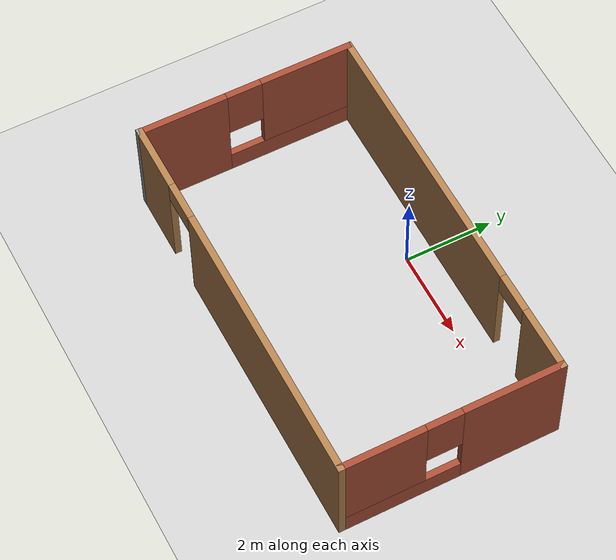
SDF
<sdf version="1.7">
 <world name="default">
  <light name="sun" type="directional">
   <pose>0 0 10 0 -0 0</pose>
   <diffuse>0.8 0.8 0.8 1</diffuse>
   <specular>0.2 0.2 0.2 1</specular>
   <attenuation>
    <range>1000</range>
    <constant>0.9</constant>
    <linear>0.01</linear>
    <quadratic>0.001</quadratic>
   </attenuation>
   <direction>-0.5 0.1 -0.9</direction>
   <spot><inner_angle>0</inner_angle><outer_angle>0</outer_angle><falloff>0</falloff></spot>
  </light>
  <model name="ground_plane">
   <static>1</static>
   <link name="link">
    <collision name="collision">
     <geometry><plane><normal>0 0 1</normal><size>100 100</size></plane></geometry>
     <surface>
      <contact><collide_bitmask>65535</collide_bitmask></contact>
      <friction><ode><mu>100</mu><mu2>50</mu2></ode></friction>
     </surface>
    </collision>
    <visual name="visual">
     <cast_shadows>0</cast_shadows>
     <geometry><plane><normal>0 0 1</normal><size>100 100</size></plane></geometry>
     <material>
      <script><uri>file://media/materials/scripts/gazebo.material</uri><name>Gazebo/Grey</name></script>
     </material>
    </visual>
   </link>
  </model>
  <gravity>0 0 -9.8</gravity>
  <magnetic_field>6e-06 2.3e-05 -4.2e-05</magnetic_field>
  <atmosphere type="adiabatic"/>
  <physics type="ode">
   <max_step_size>0.001</max_step_size>
   <real_time_factor>1</real_time_factor>
   <real_time_update_rate>1000</real_time_update_rate>
  </physics>
  <scene><ambient>0.4 0.4 0.4 1</ambient><background>0.7 0.7 0.7 1</background><shadows>1</shadows></scene>
  <audio><device>default</device></audio>
  <spherical_coordinates>
   <surface_model>EARTH_WGS84</surface_model>
   <latitude_deg>0</latitude_deg>
   <longitude_deg>0</longitude_deg>
   <elevation>0</elevation>
   <heading_deg>0</heading_deg>
  </spherical_coordinates>
  <model name="test1">
   <pose>0.507025 -1.7521 0 0 -0 0</pose>
   <link name="Wall_14">
    <pose>0.005 -2.425 0 0 -0 3.14159</pose>
    <visual name="Wall_14_Visual_0">
     <pose>-1.23615 0 1.25 0 -0 0</pose>
     <geometry><box><size>6.5277 0.15 2.5</size></box></geometry>
     <material>
      <script><uri>file://media/materials/scripts/gazebo.material</uri><name>Gazebo/Wood</name></script>
      <ambient>1 1 1 1</ambient>
     </material>
     <meta><layer>0</layer></meta>
    </visual>
    <collision name="Wall_14_Collision_0">
     <geometry><box><size>6.5277 0.15 2.5</size></box></geometry>
     <pose>-1.23615 0 1.25 0 -0 0</pose>
    </collision>
    <visual name="Wall_14_Visual_1">
     <pose>3.71385 0 1.25 0 -0 0</pose>
     <geometry><box><size>1.5723 0.15 2.5</size></box></geometry>
     <material>
      <script><uri>file://media/materials/scripts/gazebo.material</uri><name>Gazebo/Wood</name></script>
      <ambient>1 1 1 1</ambient>
     </material>
     <meta><layer>0</layer></meta>
    </visual>
    <collision name="Wall_14_Collision_1">
     <geometry><box><size>1.5723 0.15 2.5</size></box></geometry>
     <pose>3.71385 0 1.25 0 -0 0</pose>
    </collision>
    <visual name="Wall_14_Visual_2">
     <pose>2.4777 0 2.25 0 -0 0</pose>
     <geometry><box><size>0.9 0.15 0.5</size></box></geometry>
     <material>
      <script><uri>file://media/materials/scripts/gazebo.material</uri><name>Gazebo/Wood</name></script>
      <ambient>1 1 1 1</ambient>
     </material>
     <meta><layer>0</layer></meta>
    </visual>
    <collision name="Wall_14_Collision_2">
     <geometry><box><size>0.9 0.15 0.5</size></box></geometry>
     <pose>2.4777 0 2.25 0 -0 0</pose>
    </collision>
   </link>
   <link name="Wall_6">
    <collision name="Wall_6_Collision">
     <geometry><box><size>0.16 0.15 2.5</size></box></geometry>
     <pose>0 0 1.25 0 -0 0</pose>
    </collision>
    <visual name="Wall_6_Visual">
     <pose>0 0 1.25 0 -0 0</pose>
     <geometry><box><size>0.16 0.15 2.5</size></box></geometry>
     <material>
      <script><uri>file://media/materials/scripts/gazebo.material</uri><name>Gazebo/Grey</name></script>
      <ambient>1 1 1 1</ambient>
     </material>
     <meta><layer>0</layer></meta>
    </visual>
    <pose>-4.425 -2.425 0 0 -0 0</pose>
   </link>
   <link name="Wall_7">
    <pose>-4.42 -0 0 0 -0 1.5708</pose>
    <visual name="Wall_7_Visual_0">
     <pose>-1.47886 0 1.25 0 -0 0</pose>
     <geometry><box><size>2.04228 0.15 2.5</size></box></geometry>
     <material>
      <script><uri>file://media/materials/scripts/gazebo.material</uri><name>Gazebo/Bricks</name></script>
      <ambient>1 1 1 1</ambient>
     </material>
     <meta><layer>0</layer></meta>
    </visual>
    <collision name="Wall_7_Collision_0">
     <geometry><box><size>2.04228 0.15 2.5</size></box></geometry>
     <pose>-1.47886 0 1.25 0 -0 0</pose>
    </collision>
    <visual name="Wall_7_Visual_1">
     <pose>1.02114 0 0.25 0 -0 0</pose>
     <geometry><box><size>2.95772 0.15 0.5</size></box></geometry>
     <material>
      <script><uri>file://media/materials/scripts/gazebo.material</uri><name>Gazebo/Bricks</name></script>
      <ambient>1 1 1 1</ambient>
     </material>
     <meta><layer>0</layer></meta>
    </visual>
    <collision name="Wall_7_Collision_1">
     <geometry><box><size>2.95772 0.15 0.5</size></box></geometry>
     <pose>1.02114 0 0.25 0 -0 0</pose>
    </collision>
    <visual name="Wall_7_Visual_2">
     <pose>1.42114 0 1.5 0 -0 0</pose>
     <geometry><box><size>2.15773 0.15 2</size></box></geometry>
     <material>
      <script><uri>file://media/materials/scripts/gazebo.material</uri><name>Gazebo/Bricks</name></script>
      <ambient>1 1 1 1</ambient>
     </material>
     <meta><layer>0</layer></meta>
    </visual>
    <collision name="Wall_7_Collision_2">
     <geometry><box><size>2.15773 0.15 2</size></box></geometry>
     <pose>1.42114 0 1.5 0 -0 0</pose>
    </collision>
    <visual name="Wall_7_Visual_3">
     <pose>-0.057725 0 1.9 0 -0 0</pose>
     <geometry><box><size>0.8 0.15 1.2</size></box></geometry>
     <material>
      <script><uri>file://media/materials/scripts/gazebo.material</uri><name>Gazebo/Bricks</name></script>
      <ambient>1 1 1 1</ambient>
     </material>
     <meta><layer>0</layer></meta>
    </visual>
    <collision name="Wall_7_Collision_3">
     <geometry><box><size>0.8 0.15 1.2</size></box></geometry>
     <pose>-0.057725 0 1.9 0 -0 0</pose>
    </collision>
   </link>
   <link name="Wall_8">
    <pose>0.005 2.425 0 0 -0 0</pose>
    <visual name="Wall_8_Visual_0">
     <pose>-1.19449 0 1.25 0 -0 0</pose>
     <geometry><box><size>6.61102 0.15 2.5</size></box></geometry>
     <material>
      <script><uri>file://media/materials/scripts/gazebo.material</uri><name>Gazebo/Wood</name></script>
      <ambient>1 1 1 1</ambient>
     </material>
     <meta><layer>0</layer></meta>
    </visual>
    <collision name="Wall_8_Collision_0">
     <geometry><box><size>6.61102 0.15 2.5</size></box></geometry>
     <pose>-1.19449 0 1.25 0 -0 0</pose>
    </collision>
    <visual name="Wall_8_Visual_1">
     <pose>3.75551 0 1.25 0 -0 0</pose>
     <geometry><box><size>1.48897 0.15 2.5</size></box></geometry>
     <material>
      <script><uri>file://media/materials/scripts/gazebo.material</uri><name>Gazebo/Wood</name></script>
      <ambient>1 1 1 1</ambient>
     </material>
     <meta><layer>0</layer></meta>
    </visual>
    <collision name="Wall_8_Collision_1">
     <geometry><box><size>1.48897 0.15 2.5</size></box></geometry>
     <pose>3.75551 0 1.25 0 -0 0</pose>
    </collision>
    <visual name="Wall_8_Visual_2">
     <pose>2.56102 0 2.25 0 -0 0</pose>
     <geometry><box><size>0.9 0.15 0.5</size></box></geometry>
     <material>
      <script><uri>file://media/materials/scripts/gazebo.material</uri><name>Gazebo/Wood</name></script>
      <ambient>1 1 1 1</ambient>
     </material>
     <meta><layer>0</layer></meta>
    </visual>
    <collision name="Wall_8_Collision_2">
     <geometry><box><size>0.9 0.15 0.5</size></box></geometry>
     <pose>2.56102 0 2.25 0 -0 0</pose>
    </collision>
   </link>
   <link name="Wall_9">
    <pose>4.43 -0 0 0 -0 -1.5708</pose>
    <visual name="Wall_9_Visual_0">
     <pose>-1.36163 0 1.25 0 -0 0</pose>
     <geometry><box><size>2.27675 0.15 2.5</size></box></geometry>
     <material>
      <script><uri>file://media/materials/scripts/gazebo.material</uri><name>Gazebo/Bricks</name></script>
      <ambient>1 1 1 1</ambient>
     </material>
     <meta><layer>0</layer></meta>
    </visual>
    <collision name="Wall_9_Collision_0">
     <geometry><box><size>2.27675 0.15 2.5</size></box></geometry>
     <pose>-1.36163 0 1.25 0 -0 0</pose>
    </collision>
    <visual name="Wall_9_Visual_1">
     <pose>1.13837 0 0.25 0 -0 0</pose>
     <geometry><box><size>2.72325 0.15 0.5</size></box></geometry>
     <material>
      <script><uri>file://media/materials/scripts/gazebo.material</uri><name>Gazebo/Bricks</name></script>
      <ambient>1 1 1 1</ambient>
     </material>
     <meta><layer>0</layer></meta>
    </visual>
    <collision name="Wall_9_Collision_1">
     <geometry><box><size>2.72325 0.15 0.5</size></box></geometry>
     <pose>1.13837 0 0.25 0 -0 0</pose>
    </collision>
    <visual name="Wall_9_Visual_2">
     <pose>1.53838 0 1.5 0 -0 0</pose>
     <geometry><box><size>1.92325 0.15 2</size></box></geometry>
     <material>
      <script><uri>file://media/materials/scripts/gazebo.material</uri><name>Gazebo/Bricks</name></script>
      <ambient>1 1 1 1</ambient>
     </material>
     <meta><layer>0</layer></meta>
    </visual>
    <collision name="Wall_9_Collision_2">
     <geometry><box><size>1.92325 0.15 2</size></box></geometry>
     <pose>1.53838 0 1.5 0 -0 0</pose>
    </collision>
    <visual name="Wall_9_Visual_3">
     <pose>0.17675 0 1.9 0 -0 0</pose>
     <geometry><box><size>0.8 0.15 1.2</size></box></geometry>
     <material>
      <script><uri>file://media/materials/scripts/gazebo.material</uri><name>Gazebo/Bricks</name></script>
      <ambient>1 1 1 1</ambient>
     </material>
     <meta><layer>0</layer></meta>
    </visual>
    <collision name="Wall_9_Collision_3">
     <geometry><box><size>0.8 0.15 1.2</size></box></geometry>
     <pose>0.17675 0 1.9 0 -0 0</pose>
    </collision>
   </link>
   <static>1</static>
  </model>
 </world>
</sdf>
